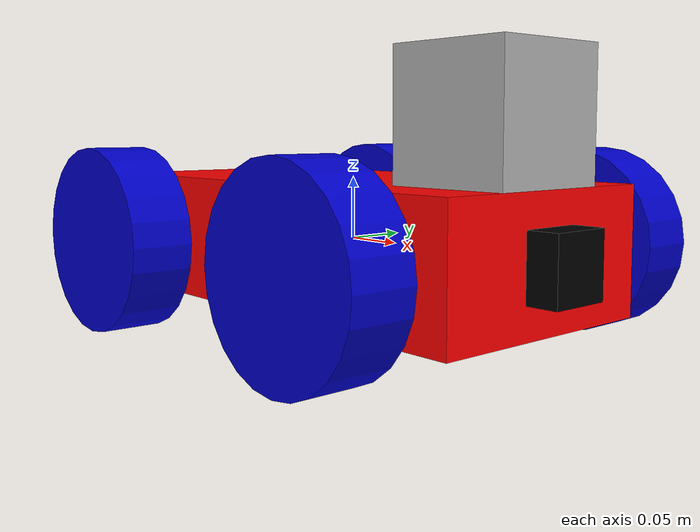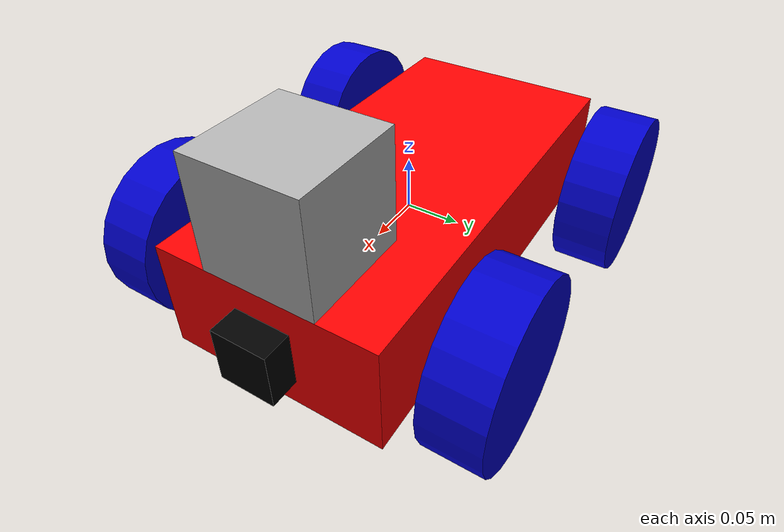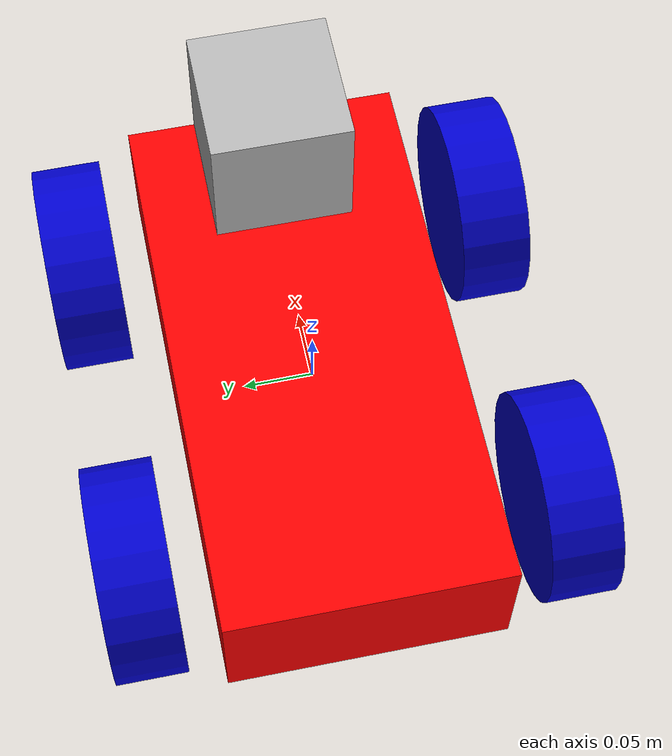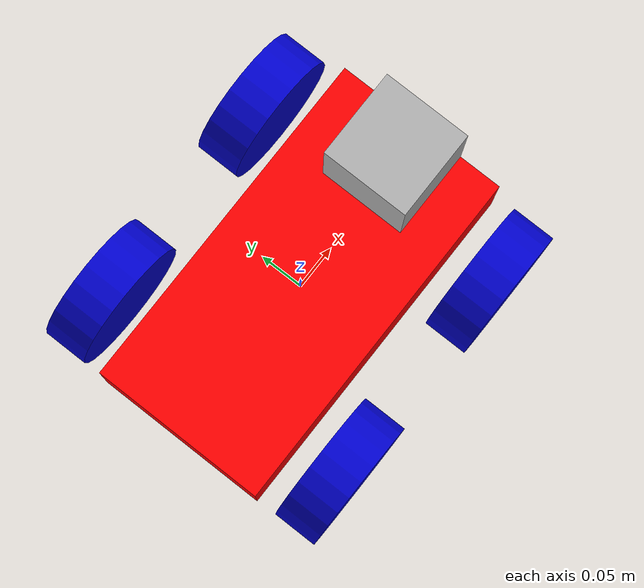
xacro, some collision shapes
<?xml version='1.0'?>

<robot name="my_robot" xmlns:xacro="http://www.ros.org/wiki/xacro">
<xacro:include filename="$(find my_robot)/urdf/my_robot.gazebo" />
  <material name="blue">
    <color rgba="0 0 0.8 1"/>
  </material>

  <material name="black">
    <color rgba="0 0 0 1"/>
  </material>

  <material name="green">
    <color rgba="0 1 0 1"/>
  </material>
  <material name="red">
    <color rgba="1 0 0 1"/>
  </material>
  <material name="brown">
    <color rgba="0.4 0.2 0 1"/>
  </material>
 <material name="purple">
    <color rgba="0.3 0 0.6 1"/>
  </material>

  <link name="robot_footprint"></link>

  <joint name="robot_footprint_joint" type="fixed">
    <origin xyz="0 0 0" rpy="0 0 0" />
    <parent link="robot_footprint"/>
    <child link="chassis" />
  </joint>

  <link name='chassis'>
    <pose>0 0 0.1 0 0 0</pose>

    <inertial>
      <mass value="15.0"/>
      <origin xyz="0.0 0 0" rpy=" 0 0 0"/>
      <inertia
          ixx="0.1" ixy="0" ixz="0"
          iyy="0.1" iyz="0"
          izz="0.1"
      />
    </inertial>

    <collision name='collision'>
      <origin xyz="0 0 0" rpy=" 0 0 0"/>
      <geometry>
        <box size=".4 .2 .1"/>
      </geometry>
    </collision>

    <visual name='chassis_visual'>
      <origin xyz="0 0 0" rpy=" 0 0 0"/>
      <geometry>
        <box size=".4 .2 .1"/>
      </geometry>
      <material name="red"/>
    </visual>

  </link>

  <joint type="continuous" name="left_front_wheel_hinge">
    <origin xyz="0.125 0.15 0" rpy="0 0 0"/>
    <child link="left_front_wheel"/>
    <parent link="chassis"/>
    <axis xyz="0 1 0" rpy="0 0 0"/>
    <limit effort="10000" velocity="1000"/>
    <dynamics damping="1.0" friction="1.0"/>
  </joint>

  <link name="left_front_wheel">

     <inertial>
      <mass value="5"/>
      <origin xyz="0 0 0" rpy="0 1.5707 1.5707"/>
      <inertia
          ixx="0.1" ixy="0" ixz="0"
          iyy="0.1" iyz="0"
          izz="0.1"
      />
    </inertial>

    <collision name='left_front_wheel_collision'>
      <origin xyz="0 0 0" rpy="0 1.5707 1.5707"/>
      <geometry>
        <cylinder  radius="0.075" length="0.05"/>
      </geometry>
    </collision>

    <visual name='left_front_wheel_visual'>
       <origin xyz="0 0 0" rpy="0 1.5707 1.5707"/>
      <geometry>
        <cylinder  radius="0.075" length="0.05"/>
      </geometry>
      <material name="blue"/>
    </visual>

  </link>

  <joint type="continuous" name="left_rear_wheel_hinge">
    <origin xyz="-0.125 0.15 0" rpy="0 0 0"/>
    <child link="left_rear_wheel"/>
    <parent link="chassis"/>
    <axis xyz="0 1 0" rpy="0 0 0"/>
    <limit effort="10000" velocity="1000"/>
    <dynamics damping="1.0" friction="1.0"/>
  </joint>

  <link name="left_rear_wheel">

     <inertial>
      <mass value="5"/>
      <origin xyz="0 0 0" rpy="0 1.5707 1.5707"/>
      <inertia
          ixx="0.1" ixy="0" ixz="0"
          iyy="0.1" iyz="0"
          izz="0.1"
      />
    </inertial>

    <collision name='left_rear_wheel_collision'>
      <origin xyz="0 0 0" rpy="0 1.5707 1.5707"/>
      <geometry>
        <cylinder  radius="0.075" length="0.05"/>
      </geometry>
    </collision>

    <visual name='left_rear_wheel_visual'>
       <origin xyz="0 0 0" rpy="0 1.5707 1.5707"/>
      <geometry>
        <cylinder  radius="0.075" length="0.05"/>
      </geometry>
      <material name="blue"/>
    </visual>

  </link>

 <joint type="continuous" name="right_front_wheel_hinge">
    <origin xyz="0.125 -0.15 0" rpy="0 0 0"/>
    <child link="right_front_wheel"/>
    <parent link="chassis"/>
    <axis xyz="0 1 0" rpy="0 0 0"/>
    <limit effort="10000" velocity="1000"/>
    <dynamics damping="1.0" friction="1.0"/>
  </joint>

  <link name="right_front_wheel">

     <inertial>
      <mass value="5"/>
      <origin xyz="0 0 0" rpy="0 1.5707 1.5707"/>
      <inertia
          ixx="0.1" ixy="0" ixz="0"
          iyy="0.1" iyz="0"
          izz="0.1"
      />
    </inertial>

    <collision name='right_front_wheel_collision'>
      <origin xyz="0 0 0" rpy="0 1.5707 1.5707"/>
      <geometry>
        <cylinder  radius="0.075" length="0.05"/>
      </geometry>
    </collision>

    <visual name='right_front_wheel_visual'>
       <origin xyz="0 0 0" rpy="0 1.5707 1.5707"/>
      <geometry>
        <cylinder  radius="0.075" length="0.05"/>
      </geometry>
      <material name="blue"/>
    </visual>

  </link>

 <joint type="continuous" name="right_rear_wheel_hinge">
    <origin xyz="-0.125 -0.15 0" rpy="0 0 0"/>
    <child link="right_rear_wheel"/>
    <parent link="chassis"/>
    <axis xyz="0 1 0" rpy="0 0 0"/>
    <limit effort="10000" velocity="1000"/>
    <dynamics damping="1.0" friction="1.0"/>
  </joint>

  <link name="right_rear_wheel">

     <inertial>
      <mass value="5"/>
      <origin xyz="0 0 0" rpy="0 1.5707 1.5707"/>
      <inertia
          ixx="0.1" ixy="0" ixz="0"
          iyy="0.1" iyz="0"
          izz="0.1"
      />
    </inertial>

    <collision name='right_rear_wheel_collision'>
      <origin xyz="0 0 0" rpy="0 1.5707 1.5707"/>
      <geometry>
        <cylinder  radius="0.075" length="0.05"/>
      </geometry>
    </collision>

    <visual name='right_rear_wheel_visual'>
       <origin xyz="0 0 0" rpy="0 1.5707 1.5707"/>
      <geometry>
        <cylinder  radius="0.075" length="0.05"/>
      </geometry>
      <material name="blue"/>
    </visual>

  </link>
 <joint type="fixed" name="camera_joint">
    <origin xyz="0.2 0 0" rpy="0 0 0"/>
    <child link="camera"/>
    <parent link="chassis"/>
    <axis xyz="0 1 0" rpy="0 0 0"/>
  </joint>

  <link name="camera">

     <inertial>
      <mass value="0.1"/>
      <origin xyz="0 0 0" rpy="0 0 0"/>
      <inertia
          ixx="1e-6" ixy="0" ixz="0"
          iyy="1e-6" iyz="0"
          izz="1e-6"
      />
    </inertial>

    <collision name='camera_collision'>
      <origin xyz="0 0 0" rpy="0 0 0"/>
      <geometry>
        <box size=".05 .05 .05"/>
      </geometry>
    </collision>

    <visual name='camera_visual'>
       <origin xyz="0 0 0" rpy="0 0 0"/>
      <geometry>
        <box size=".05 .05 .05"/>
      </geometry>
      <material name="black"/>
    </visual>

  </link>
<joint type="fixed" name="hokuyo_joint">
    <origin xyz="0.15 0 0.1" rpy="0 0 0"/>
    <child link="hokuyo"/>
    <parent link="chassis"/>
    <axis xyz="0 1 0" rpy="0 0 0"/>
  </joint>

  <link name="hokuyo">

     <inertial>
      <mass value="1e-5"/>
      <origin xyz="0 0 0" rpy="0 0 0"/>
      <inertia
          ixx="1e-6" ixy="0" ixz="0"
          iyy="1e-6" iyz="0"
          izz="1e-6"
      />
    </inertial>

    <collision name='hokuyo_collision'>
      <origin xyz="0 0 0" rpy="0 0 0"/>
      <geometry>
        <box size=".1 .1 .1"/>
      </geometry>
    </collision>

    <visual name='hokuyo_visual'>
       <origin xyz="0 0 0" rpy="0 0 0"/>
      <geometry>
        <mesh filename="package://my_robot/meshes/hokuyo.dae"/>
      </geometry>
    </visual>

  </link>

</robot>
